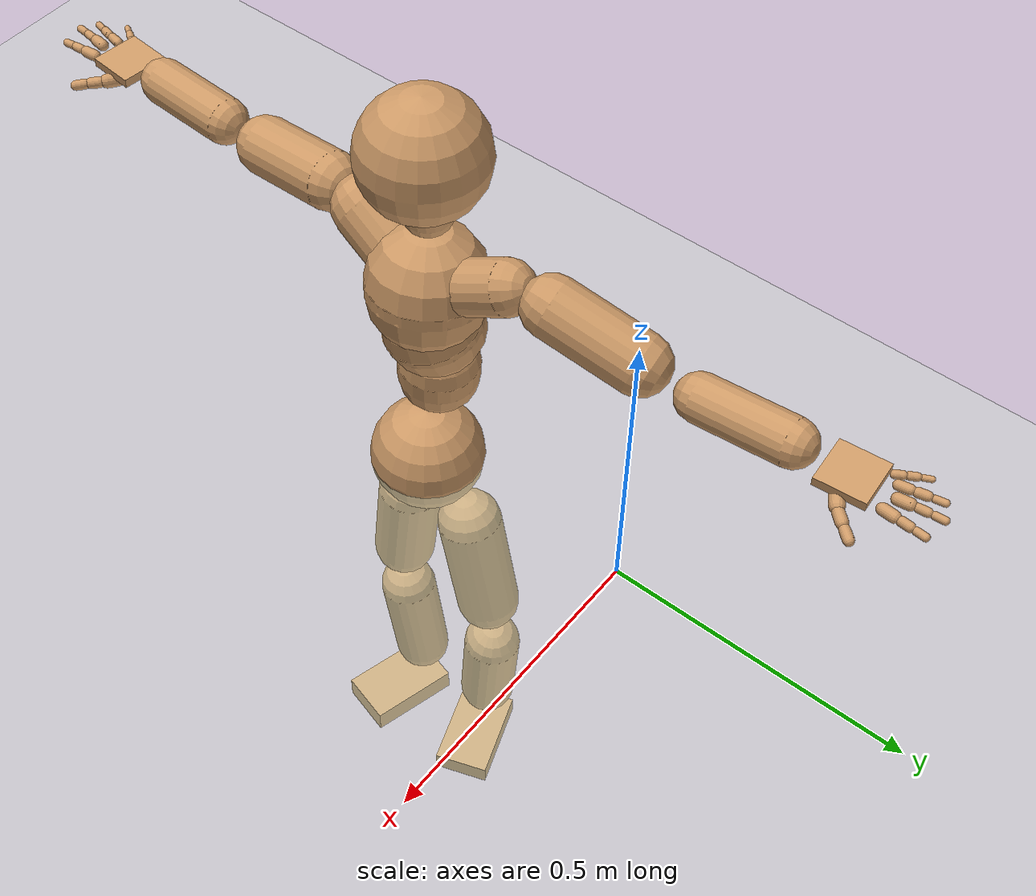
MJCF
<mujoco model="humanoid">
  <compiler coordinate="local" angle="radian"/>
  <default>
    <joint damping="0.0" armature="0.01" stiffness="0.0" limited="true"/>
    <geom conaffinity="1" condim="3" contype="7" margin="0.001" rgba="0.8 0.6 .4 1"/>
  </default>
  <asset>
    <texture type="skybox" builtin="gradient" rgb1=".4 .5 .6" rgb2="0 0 0" width="100" height="100"/>
    <texture builtin="flat" height="1278" mark="cross" markrgb="1 1 1" name="texgeom" random="0.01" rgb1="0.8 0.6 0.4" rgb2="0.8 0.6 0.4" type="cube" width="127"/>
    <texture builtin="checker" height="100" name="texplane" rgb1="0 0 0" rgb2="0.8 0.8 0.8" type="2d" width="100"/>
    <material name="MatPlane" reflectance="0.5" shininess="1" specular="1" texrepeat="60 60" texture="texplane"/>
    <material name="geom" texture="texgeom" texuniform="true"/>
  </asset>
  <worldbody>
    <light cutoff="100" diffuse="1 1 1" dir="-0 0 -1.3" directional="true" exponent="1" pos="0 0 1.3" specular=".1 .1 .1"/>
    <geom conaffinity="1" condim="3" name="floor" pos="0 0 0" rgba="0.8 0.9 0.8 1" size="100 100 .2" type="plane" material="MatPlane"/>
    <body name="Pelvis" pos="0.0008 -0.3736 0.0043">
      <freejoint name="Pelvis"/>
      <geom type="sphere" contype="1" conaffinity="1" density="500" size="0.0936" pos="0.0000 0.0000 0.0000" name="Pelvis"/>
      <body name="L_Hip" pos="-0.0249 0.0514 -0.0912">
        <joint name="L_Hip_x" type="hinge" pos="0 0 0" axis="1 0 0" stiffness="800" damping="80" armature="0.02" range="-180.0000 180.0000"/>
        <joint name="L_Hip_y" type="hinge" pos="0 0 0" axis="0 1 0" stiffness="800" damping="80" armature="0.02" range="-180.0000 180.0000"/>
        <joint name="L_Hip_z" type="hinge" pos="0 0 0" axis="0 0 1" stiffness="800" damping="80" armature="0.02" range="-180.0000 180.0000"/>
        <geom type="capsule" contype="1" conaffinity="1" density="500" fromto="-0.0016 0.0123 -0.0685 -0.0063 0.0494 -0.2741" size="0.054" name="L_Hip"/>
        <body name="L_Knee" pos="-0.0079 0.0617 -0.3426">
          <joint name="L_Knee_x" type="hinge" pos="0 0 0" axis="1 0 0" stiffness="800" damping="80" armature="0.02" range="-180.0000 180.0000"/>
          <joint name="L_Knee_y" type="hinge" pos="0 0 0" axis="0 1 0" stiffness="800" damping="80" armature="0.02" range="-180.0000 180.0000"/>
          <joint name="L_Knee_z" type="hinge" pos="0 0 0" axis="0 0 1" stiffness="800" damping="80" armature="0.02" range="-180.0000 180.0000"/>
          <geom type="capsule" contype="1" conaffinity="1" density="500" fromto="-0.0070 -0.0090 -0.0701 -0.0280 -0.0362 -0.2804" size="0.0499" name="L_Knee"/>
          <body name="L_Ankle" pos="-0.035 -0.0452 -0.3505">
            <joint name="L_Ankle_x" type="hinge" pos="0 0 0" axis="1 0 0" stiffness="800" damping="80" armature="0.02" range="-180.0000 180.0000"/>
            <joint name="L_Ankle_y" type="hinge" pos="0 0 0" axis="0 1 0" stiffness="800" damping="80" armature="0.02" range="-180.0000 180.0000"/>
            <joint name="L_Ankle_z" type="hinge" pos="0 0 0" axis="0 0 1" stiffness="800" damping="80" armature="0.02" range="-180.0000 180.0000"/>
            <geom type="box" contype="1" conaffinity="1" density="500" pos="0.0611 0.0217 -0.0255" size="0.0823 0.0494 0.0192" quat="0.9855 0.0000 0.0000 0.1695" name="L_Ankle"/>
            <body name="L_Toe" pos="0.1222 0.0433 -0.0511">
              <joint name="L_Toe_x" type="hinge" pos="0 0 0" axis="1 0 0" stiffness="500" damping="50" armature="0.02" range="-180.0000 180.0000"/>
              <joint name="L_Toe_y" type="hinge" pos="0 0 0" axis="0 1 0" stiffness="500" damping="50" armature="0.02" range="-180.0000 180.0000"/>
              <joint name="L_Toe_z" type="hinge" pos="0 0 0" axis="0 0 1" stiffness="500" damping="50" armature="0.02" range="-180.0000 180.0000"/>
              <geom type="box" contype="1" conaffinity="1" density="500" pos="0.0000 0.0000 0.0265" size="0.001 0.0023 0.001" quat="0.9847 0.0000 0.0000 0.1740" name="L_Toe"/>
            </body>
          </body>
        </body>
      </body>
      <body name="R_Hip" pos="-0.0192 -0.0524 -0.1009">
        <joint name="R_Hip_x" type="hinge" pos="0 0 0" axis="1 0 0" stiffness="800" damping="80" armature="0.02" range="-180.0000 180.0000"/>
        <joint name="R_Hip_y" type="hinge" pos="0 0 0" axis="0 1 0" stiffness="800" damping="80" armature="0.02" range="-180.0000 180.0000"/>
        <joint name="R_Hip_z" type="hinge" pos="0 0 0" axis="0 0 1" stiffness="800" damping="80" armature="0.02" range="-180.0000 180.0000"/>
        <geom type="capsule" contype="1" conaffinity="1" density="500" fromto="-0.0029 -0.0094 -0.0656 -0.0114 -0.0375 -0.2623" size="0.0538" name="R_Hip"/>
        <body name="R_Knee" pos="-0.0143 -0.0469 -0.3279">
          <joint name="R_Knee_x" type="hinge" pos="0 0 0" axis="1 0 0" stiffness="800" damping="80" armature="0.02" range="-180.0000 180.0000"/>
          <joint name="R_Knee_y" type="hinge" pos="0 0 0" axis="0 1 0" stiffness="800" damping="80" armature="0.02" range="-180.0000 180.0000"/>
          <joint name="R_Knee_z" type="hinge" pos="0 0 0" axis="0 0 1" stiffness="800" damping="80" armature="0.02" range="-180.0000 180.0000"/>
          <geom type="capsule" contype="1" conaffinity="1" density="500" fromto="-0.0069 0.0037 -0.0723 -0.0275 0.0146 -0.2892" size="0.0498" name="R_Knee"/>
          <body name="R_Ankle" pos="-0.0344 0.0183 -0.3615">
            <joint name="R_Ankle_x" type="hinge" pos="0 0 0" axis="1 0 0" stiffness="800" damping="80" armature="0.02" range="-180.0000 180.0000"/>
            <joint name="R_Ankle_y" type="hinge" pos="0 0 0" axis="0 1 0" stiffness="800" damping="80" armature="0.02" range="-180.0000 180.0000"/>
            <joint name="R_Ankle_z" type="hinge" pos="0 0 0" axis="0 0 1" stiffness="800" damping="80" armature="0.02" range="-180.0000 180.0000"/>
            <geom type="box" contype="1" conaffinity="1" density="500" pos="0.0642 -0.0172 -0.0255" size="0.0823 0.0502 0.0228" quat="0.9914 0.0000 0.0000 -0.1308" name="R_Ankle"/>
            <body name="R_Toe" pos="0.1284 -0.0345 -0.0511">
              <joint name="R_Toe_x" type="hinge" pos="0 0 0" axis="1 0 0" stiffness="500" damping="50" armature="0.02" range="-180.0000 180.0000"/>
              <joint name="R_Toe_y" type="hinge" pos="0 0 0" axis="0 1 0" stiffness="500" damping="50" armature="0.02" range="-180.0000 180.0000"/>
              <joint name="R_Toe_z" type="hinge" pos="0 0 0" axis="0 0 1" stiffness="500" damping="50" armature="0.02" range="-180.0000 180.0000"/>
              <geom type="box" contype="1" conaffinity="1" density="500" pos="0.0000 0.0000 0.0229" size="0.001 0.0023 0.001" quat="0.9926 0.0000 0.0000 -0.1218" name="R_Toe"/>
            </body>
          </body>
        </body>
      </body>
      <body name="Torso" pos="-0.0325 -0.0013 0.1053">
        <joint name="Torso_x" type="hinge" pos="0 0 0" axis="1 0 0" stiffness="1000" damping="100" armature="0.02" range="-180.0000 180.0000"/>
        <joint name="Torso_y" type="hinge" pos="0 0 0" axis="0 1 0" stiffness="1000" damping="100" armature="0.02" range="-180.0000 180.0000"/>
        <joint name="Torso_z" type="hinge" pos="0 0 0" axis="0 0 1" stiffness="1000" damping="100" armature="0.02" range="-180.0000 180.0000"/>
        <geom type="capsule" contype="1" conaffinity="1" density="500" fromto="0.0036 0.0051 0.0929 0.0024 0.0034 0.0619" size="0.0651" name="Torso"/>
        <body name="Spine" pos="0.006 0.0085 0.1548">
          <joint name="Spine_x" type="hinge" pos="0 0 0" axis="1 0 0" stiffness="1000" damping="100" armature="0.02" range="-180.0000 180.0000"/>
          <joint name="Spine_y" type="hinge" pos="0 0 0" axis="0 1 0" stiffness="1000" damping="100" armature="0.02" range="-180.0000 180.0000"/>
          <joint name="Spine_z" type="hinge" pos="0 0 0" axis="0 0 1" stiffness="1000" damping="100" armature="0.02" range="-180.0000 180.0000"/>
          <geom type="capsule" contype="1" conaffinity="1" density="500" fromto="0.0100 -0.0048 0.0347 0.0067 -0.0032 0.0231" size="0.0804" name="Spine"/>
          <body name="Chest" pos="0.0167 -0.008 0.0578">
            <joint name="Chest_x" type="hinge" pos="0 0 0" axis="1 0 0" stiffness="1000" damping="100" armature="0.02" range="-180.0000 180.0000"/>
            <joint name="Chest_y" type="hinge" pos="0 0 0" axis="0 1 0" stiffness="1000" damping="100" armature="0.02" range="-180.0000 180.0000"/>
            <joint name="Chest_z" type="hinge" pos="0 0 0" axis="0 0 1" stiffness="1000" damping="100" armature="0.02" range="-180.0000 180.0000"/>
            <geom type="capsule" contype="1" conaffinity="1" density="500" fromto="-0.0058 -0.0018 0.0607 -0.0039 -0.0012 0.0405" size="0.0942" name="Chest"/>
            <body name="Neck" pos="-0.0194 -0.0074 0.1578">
              <joint name="Neck_x" type="hinge" pos="0 0 0" axis="1 0 0" stiffness="500" damping="50" armature="0.02" range="-180.0000 180.0000"/>
              <joint name="Neck_y" type="hinge" pos="0 0 0" axis="0 1 0" stiffness="500" damping="50" armature="0.02" range="-180.0000 180.0000"/>
              <joint name="Neck_z" type="hinge" pos="0 0 0" axis="0 0 1" stiffness="500" damping="50" armature="0.02" range="-180.0000 180.0000"/>
              <geom type="capsule" contype="1" conaffinity="1" density="500" fromto="0.0064 0.0040 0.0322 0.0255 0.0160 0.1288" size="0.0396" name="Neck"/>
              <body name="Head" pos="0.0318 0.02 0.161">
                <joint name="Head_x" type="hinge" pos="0 0 0" axis="1 0 0" stiffness="500" damping="50" armature="0.02" range="-180.0000 180.0000"/>
                <joint name="Head_y" type="hinge" pos="0 0 0" axis="0 1 0" stiffness="500" damping="50" armature="0.02" range="-180.0000 180.0000"/>
                <joint name="Head_z" type="hinge" pos="0 0 0" axis="0 0 1" stiffness="500" damping="50" armature="0.02" range="-180.0000 180.0000"/>
                <geom type="sphere" contype="1" conaffinity="1" density="500" size="0.0975" pos="0.0000 0.0000 0.0000" name="Head"/>
              </body>
            </body>
            <body name="L_Thorax" pos="-0.003 0.0375 0.0725">
              <joint name="L_Thorax_x" type="hinge" pos="0 0 0" axis="1 0 0" stiffness="500" damping="50" armature="0.02" range="-180.0000 180.0000"/>
              <joint name="L_Thorax_y" type="hinge" pos="0 0 0" axis="0 1 0" stiffness="500" damping="50" armature="0.02" range="-180.0000 180.0000"/>
              <joint name="L_Thorax_z" type="hinge" pos="0 0 0" axis="0 0 1" stiffness="500" damping="50" armature="0.02" range="-180.0000 180.0000"/>
              <geom type="capsule" contype="1" conaffinity="1" density="500" fromto="-0.0038 0.0243 0.0120 -0.0152 0.0970 0.0481" size="0.0433" name="L_Thorax"/>
              <body name="L_Shoulder" pos="-0.019 0.1213 0.0601">
                <joint name="L_Shoulder_x" type="hinge" pos="0 0 0" axis="1 0 0" stiffness="500" damping="50" armature="0.02" range="-180.0000 180.0000"/>
                <joint name="L_Shoulder_y" type="hinge" pos="0 0 0" axis="0 1 0" stiffness="500" damping="50" armature="0.02" range="-180.0000 180.0000"/>
                <joint name="L_Shoulder_z" type="hinge" pos="0 0 0" axis="0 0 1" stiffness="500" damping="50" armature="0.02" range="-180.0000 180.0000"/>
                <geom type="capsule" contype="1" conaffinity="1" density="500" fromto="-0.0067 0.0460 -0.0131 -0.0270 0.1838 -0.0523" size="0.0479" name="L_Shoulder"/>
                <body name="L_Elbow" pos="-0.0337 0.2298 -0.0654">
                  <joint name="L_Elbow_x" type="hinge" pos="0 0 0" axis="1 0 0" stiffness="500" damping="50" armature="0.02" range="-720.0000 720.0000"/>
                  <joint name="L_Elbow_y" type="hinge" pos="0 0 0" axis="0 1 0" stiffness="500" damping="50" armature="0.02" range="-720.0000 720.0000"/>
                  <joint name="L_Elbow_z" type="hinge" pos="0 0 0" axis="0 0 1" stiffness="500" damping="50" armature="0.02" range="-720.0000 720.0000"/>
                  <geom type="capsule" contype="1" conaffinity="1" density="500" fromto="-0.0009 0.0486 0.0041 -0.0038 0.1943 0.0166" size="0.0368" name="L_Elbow"/>
                  <body name="L_Wrist" pos="-0.0047 0.2429 0.0207">
                    <joint name="L_Wrist_x" type="hinge" pos="0 0 0" axis="1 0 0" stiffness="300" damping="30" armature="0.02" range="-180.0000 180.0000"/>
                    <joint name="L_Wrist_y" type="hinge" pos="0 0 0" axis="0 1 0" stiffness="300" damping="30" armature="0.02" range="-180.0000 180.0000"/>
                    <joint name="L_Wrist_z" type="hinge" pos="0 0 0" axis="0 0 1" stiffness="300" damping="30" armature="0.02" range="-180.0000 180.0000"/>
                    <geom type="box" contype="1" conaffinity="1" density="500" pos="-0.0034 0.0393 -0.0060" size="0.0391 0.0396 0.0073" quat="0.7366 0.0000 0.0000 -0.6763" name="L_Wrist"/>
                    <body name="L_Index1" pos="0.0179 0.0923 -0.0095">
                      <joint name="L_Index1_x" type="hinge" pos="0 0 0" axis="1 0 0" stiffness="100" damping="10" armature="0.02" range="-180.0000 180.0000"/>
                      <joint name="L_Index1_y" type="hinge" pos="0 0 0" axis="0 1 0" stiffness="100" damping="10" armature="0.02" range="-180.0000 180.0000"/>
                      <joint name="L_Index1_z" type="hinge" pos="0 0 0" axis="0 0 1" stiffness="100" damping="10" armature="0.02" range="-180.0000 180.0000"/>
                      <geom type="capsule" contype="1" conaffinity="1" density="500" fromto="0.0007 0.0062 0.0003 0.0026 0.0248 0.0010" size="0.009" name="L_Index1"/>
                      <body name="L_Index2" pos="0.0033 0.031 0.0013">
                        <joint name="L_Index2_x" type="hinge" pos="0 0 0" axis="1 0 0" stiffness="100" damping="10" armature="0.02" range="-180.0000 180.0000"/>
                        <joint name="L_Index2_y" type="hinge" pos="0 0 0" axis="0 1 0" stiffness="100" damping="10" armature="0.02" range="-180.0000 180.0000"/>
                        <joint name="L_Index2_z" type="hinge" pos="0 0 0" axis="0 0 1" stiffness="100" damping="10" armature="0.02" range="-180.0000 180.0000"/>
                        <geom type="capsule" contype="1" conaffinity="1" density="500" fromto="-0.0001 0.0044 -0.0005 -0.0002 0.0174 -0.0020" size="0.0073" name="L_Index2"/>
                        <body name="L_Index3" pos="-0.0003 0.0218 -0.0025">
                          <joint name="L_Index3_x" type="hinge" pos="0 0 0" axis="1 0 0" stiffness="100" damping="10" armature="0.02" range="-180.0000 180.0000"/>
                          <joint name="L_Index3_y" type="hinge" pos="0 0 0" axis="0 1 0" stiffness="100" damping="10" armature="0.02" range="-180.0000 180.0000"/>
                          <joint name="L_Index3_z" type="hinge" pos="0 0 0" axis="0 0 1" stiffness="100" damping="10" armature="0.02" range="-180.0000 180.0000"/>
                          <geom type="capsule" contype="1" conaffinity="1" density="500" fromto="0.0003 0.0048 -0.0001 0.0014 0.0190 -0.0004" size="0.0061" name="L_Index3"/>
                        </body>
                      </body>
                    </body>
                    <body name="L_Middle1" pos="-0.0049 0.0999 -0.0069">
                      <joint name="L_Middle1_x" type="hinge" pos="0 0 0" axis="1 0 0" stiffness="100" damping="10" armature="0.02" range="-180.0000 180.0000"/>
                      <joint name="L_Middle1_y" type="hinge" pos="0 0 0" axis="0 1 0" stiffness="100" damping="10" armature="0.02" range="-180.0000 180.0000"/>
                      <joint name="L_Middle1_z" type="hinge" pos="0 0 0" axis="0 0 1" stiffness="100" damping="10" armature="0.02" range="-180.0000 180.0000"/>
                      <geom type="capsule" contype="1" conaffinity="1" density="500" fromto="-0.0008 0.0059 0.0001 -0.0033 0.0236 0.0003" size="0.0091" name="L_Middle1"/>
                      <body name="L_Middle2" pos="-0.0041 0.0295 0.0003">
                        <joint name="L_Middle2_x" type="hinge" pos="0 0 0" axis="1 0 0" stiffness="100" damping="10" armature="0.02" range="-180.0000 180.0000"/>
                        <joint name="L_Middle2_y" type="hinge" pos="0 0 0" axis="0 1 0" stiffness="100" damping="10" armature="0.02" range="-180.0000 180.0000"/>
                        <joint name="L_Middle2_z" type="hinge" pos="0 0 0" axis="0 0 1" stiffness="100" damping="10" armature="0.02" range="-180.0000 180.0000"/>
                        <geom type="capsule" contype="1" conaffinity="1" density="500" fromto="-0.0008 0.0045 -0.0004 -0.0033 0.0180 -0.0017" size="0.0068" name="L_Middle2"/>
                        <body name="L_Middle3" pos="-0.0042 0.0224 -0.0021">
                          <joint name="L_Middle3_x" type="hinge" pos="0 0 0" axis="1 0 0" stiffness="100" damping="10" armature="0.02" range="-180.0000 180.0000"/>
                          <joint name="L_Middle3_y" type="hinge" pos="0 0 0" axis="0 1 0" stiffness="100" damping="10" armature="0.02" range="-180.0000 180.0000"/>
                          <joint name="L_Middle3_z" type="hinge" pos="0 0 0" axis="0 0 1" stiffness="100" damping="10" armature="0.02" range="-180.0000 180.0000"/>
                          <geom type="capsule" contype="1" conaffinity="1" density="500" fromto="-0.0004 0.0049 -0.0000 -0.0017 0.0196 -0.0001" size="0.0059" name="L_Middle3"/>
                        </body>
                      </body>
                    </body>
                    <body name="L_Pinky1" pos="-0.0432 0.0769 -0.0148">
                      <joint name="L_Pinky1_x" type="hinge" pos="0 0 0" axis="1 0 0" stiffness="100" damping="10" armature="0.02" range="-180.0000 180.0000"/>
                      <joint name="L_Pinky1_y" type="hinge" pos="0 0 0" axis="0 1 0" stiffness="100" damping="10" armature="0.02" range="-180.0000 180.0000"/>
                      <joint name="L_Pinky1_z" type="hinge" pos="0 0 0" axis="0 0 1" stiffness="100" damping="10" armature="0.02" range="-180.0000 180.0000"/>
                      <geom type="capsule" contype="1" conaffinity="1" density="500" fromto="-0.0022 0.0032 -0.0003 -0.0087 0.0127 -0.0013" size="0.0064" name="L_Pinky1"/>
                      <body name="L_Pinky2" pos="-0.0109 0.0159 -0.0016">
                        <joint name="L_Pinky2_x" type="hinge" pos="0 0 0" axis="1 0 0" stiffness="100" damping="10" armature="0.02" range="-180.0000 180.0000"/>
                        <joint name="L_Pinky2_y" type="hinge" pos="0 0 0" axis="0 1 0" stiffness="100" damping="10" armature="0.02" range="-180.0000 180.0000"/>
                        <joint name="L_Pinky2_z" type="hinge" pos="0 0 0" axis="0 0 1" stiffness="100" damping="10" armature="0.02" range="-180.0000 180.0000"/>
                        <geom type="capsule" contype="1" conaffinity="1" density="500" fromto="-0.0021 0.0031 -0.0003 -0.0083 0.0125 -0.0013" size="0.0062" name="L_Pinky2"/>
                        <body name="L_Pinky3" pos="-0.0103 0.0156 -0.0017">
                          <joint name="L_Pinky3_x" type="hinge" pos="0 0 0" axis="1 0 0" stiffness="100" damping="10" armature="0.02" range="-180.0000 180.0000"/>
                          <joint name="L_Pinky3_y" type="hinge" pos="0 0 0" axis="0 1 0" stiffness="100" damping="10" armature="0.02" range="-180.0000 180.0000"/>
                          <joint name="L_Pinky3_z" type="hinge" pos="0 0 0" axis="0 0 1" stiffness="100" damping="10" armature="0.02" range="-180.0000 180.0000"/>
                          <geom type="capsule" contype="1" conaffinity="1" density="500" fromto="-0.0017 0.0035 0.0001 -0.0067 0.0141 0.0003" size="0.0047" name="L_Pinky3"/>
                        </body>
                      </body>
                    </body>
                    <body name="L_Ring1" pos="-0.0275 0.089 -0.0096">
                      <joint name="L_Ring1_x" type="hinge" pos="0 0 0" axis="1 0 0" stiffness="100" damping="10" armature="0.02" range="-180.0000 180.0000"/>
                      <joint name="L_Ring1_y" type="hinge" pos="0 0 0" axis="0 1 0" stiffness="100" damping="10" armature="0.02" range="-180.0000 180.0000"/>
                      <joint name="L_Ring1_z" type="hinge" pos="0 0 0" axis="0 0 1" stiffness="100" damping="10" armature="0.02" range="-180.0000 180.0000"/>
                      <geom type="capsule" contype="1" conaffinity="1" density="500" fromto="-0.0009 0.0054 0.0001 -0.0038 0.0217 0.0004" size="0.0077" name="L_Ring1"/>
                      <body name="L_Ring2" pos="-0.0047 0.0271 0.0006">
                        <joint name="L_Ring2_x" type="hinge" pos="0 0 0" axis="1 0 0" stiffness="100" damping="10" armature="0.02" range="-180.0000 180.0000"/>
                        <joint name="L_Ring2_y" type="hinge" pos="0 0 0" axis="0 1 0" stiffness="100" damping="10" armature="0.02" range="-180.0000 180.0000"/>
                        <joint name="L_Ring2_z" type="hinge" pos="0 0 0" axis="0 0 1" stiffness="100" damping="10" armature="0.02" range="-180.0000 180.0000"/>
                        <geom type="capsule" contype="1" conaffinity="1" density="500" fromto="-0.0013 0.0044 -0.0004 -0.0051 0.0177 -0.0016" size="0.0073" name="L_Ring2"/>
                        <body name="L_Ring3" pos="-0.0063 0.0221 -0.002">
                          <joint name="L_Ring3_x" type="hinge" pos="0 0 0" axis="1 0 0" stiffness="100" damping="10" armature="0.02" range="-180.0000 180.0000"/>
                          <joint name="L_Ring3_y" type="hinge" pos="0 0 0" axis="0 1 0" stiffness="100" damping="10" armature="0.02" range="-180.0000 180.0000"/>
                          <joint name="L_Ring3_z" type="hinge" pos="0 0 0" axis="0 0 1" stiffness="100" damping="10" armature="0.02" range="-180.0000 180.0000"/>
                          <geom type="capsule" contype="1" conaffinity="1" density="500" fromto="-0.0009 0.0048 0.0000 -0.0035 0.0193 0.0000" size="0.0056" name="L_Ring3"/>
                        </body>
                      </body>
                    </body>
                    <body name="L_Thumb1" pos="0.0241 0.0352 -0.0194">
                      <joint name="L_Thumb1_x" type="hinge" pos="0 0 0" axis="1 0 0" stiffness="100" damping="10" armature="0.02" range="-180.0000 180.0000"/>
                      <joint name="L_Thumb1_y" type="hinge" pos="0 0 0" axis="0 1 0" stiffness="100" damping="10" armature="0.02" range="-180.0000 180.0000"/>
                      <joint name="L_Thumb1_z" type="hinge" pos="0 0 0" axis="0 0 1" stiffness="100" damping="10" armature="0.02" range="-180.0000 180.0000"/>
                      <geom type="capsule" contype="1" conaffinity="1" density="500" fromto="0.0050 0.0031 0.0003 0.0199 0.0123 0.0012" size="0.0115" name="L_Thumb1"/>
                      <body name="L_Thumb2" pos="0.0248 0.0153 0.0015">
                        <joint name="L_Thumb2_x" type="hinge" pos="0 0 0" axis="1 0 0" stiffness="100" damping="10" armature="0.02" range="-180.0000 180.0000"/>
                        <joint name="L_Thumb2_y" type="hinge" pos="0 0 0" axis="0 1 0" stiffness="100" damping="10" armature="0.02" range="-180.0000 180.0000"/>
                        <joint name="L_Thumb2_z" type="hinge" pos="0 0 0" axis="0 0 1" stiffness="100" damping="10" armature="0.02" range="-180.0000 180.0000"/>
                        <geom type="capsule" contype="1" conaffinity="1" density="500" fromto="0.0031 0.0039 -0.0008 0.0125 0.0155 -0.0033" size="0.0091" name="L_Thumb2"/>
                        <body name="L_Thumb3" pos="0.0156 0.0194 -0.0041">
                          <joint name="L_Thumb3_x" type="hinge" pos="0 0 0" axis="1 0 0" stiffness="100" damping="10" armature="0.02" range="-180.0000 180.0000"/>
                          <joint name="L_Thumb3_y" type="hinge" pos="0 0 0" axis="0 1 0" stiffness="100" damping="10" armature="0.02" range="-180.0000 180.0000"/>
                          <joint name="L_Thumb3_z" type="hinge" pos="0 0 0" axis="0 0 1" stiffness="100" damping="10" armature="0.02" range="-180.0000 180.0000"/>
                          <geom type="capsule" contype="1" conaffinity="1" density="500" fromto="0.0035 0.0043 -0.0004 0.0141 0.0171 -0.0017" size="0.0081" name="L_Thumb3"/>
                        </body>
                      </body>
                    </body>
                  </body>
                </body>
              </body>
            </body>
            <body name="R_Thorax" pos="-0.0065 -0.0391 0.0732">
              <joint name="R_Thorax_x" type="hinge" pos="0 0 0" axis="1 0 0" stiffness="500" damping="50" armature="0.02" range="-180.0000 180.0000"/>
              <joint name="R_Thorax_y" type="hinge" pos="0 0 0" axis="0 1 0" stiffness="500" damping="50" armature="0.02" range="-180.0000 180.0000"/>
              <joint name="R_Thorax_z" type="hinge" pos="0 0 0" axis="0 0 1" stiffness="500" damping="50" armature="0.02" range="-180.0000 180.0000"/>
              <geom type="capsule" contype="1" conaffinity="1" density="500" fromto="-0.0028 -0.0226 0.0116 -0.0113 -0.0904 0.0463" size="0.0513" name="R_Thorax"/>
              <body name="R_Shoulder" pos="-0.0141 -0.113 0.0579">
                <joint name="R_Shoulder_x" type="hinge" pos="0 0 0" axis="1 0 0" stiffness="500" damping="50" armature="0.02" range="-180.0000 180.0000"/>
                <joint name="R_Shoulder_y" type="hinge" pos="0 0 0" axis="0 1 0" stiffness="500" damping="50" armature="0.02" range="-180.0000 180.0000"/>
                <joint name="R_Shoulder_z" type="hinge" pos="0 0 0" axis="0 0 1" stiffness="500" damping="50" armature="0.02" range="-180.0000 180.0000"/>
                <geom type="capsule" contype="1" conaffinity="1" density="500" fromto="-0.0051 -0.0489 -0.0078 -0.0203 -0.1955 -0.0313" size="0.0472" name="R_Shoulder"/>
                <body name="R_Elbow" pos="-0.0254 -0.2444 -0.0391">
                  <joint name="R_Elbow_x" type="hinge" pos="0 0 0" axis="1 0 0" stiffness="500" damping="50" armature="0.02" range="-720.0000 720.0000"/>
                  <joint name="R_Elbow_y" type="hinge" pos="0 0 0" axis="0 1 0" stiffness="500" damping="50" armature="0.02" range="-720.0000 720.0000"/>
                  <joint name="R_Elbow_z" type="hinge" pos="0 0 0" axis="0 0 1" stiffness="500" damping="50" armature="0.02" range="-720.0000 720.0000"/>
                  <geom type="capsule" contype="1" conaffinity="1" density="500" fromto="-0.0027 -0.0471 -0.0002 -0.0108 -0.1883 -0.0007" size="0.0377" name="R_Elbow"/>
                  <body name="R_Wrist" pos="-0.0135 -0.2353 -0.0009">
                    <joint name="R_Wrist_x" type="hinge" pos="0 0 0" axis="1 0 0" stiffness="300" damping="30" armature="0.02" range="-180.0000 180.0000"/>
                    <joint name="R_Wrist_y" type="hinge" pos="0 0 0" axis="0 1 0" stiffness="300" damping="30" armature="0.02" range="-180.0000 180.0000"/>
                    <joint name="R_Wrist_z" type="hinge" pos="0 0 0" axis="0 0 1" stiffness="300" damping="30" armature="0.02" range="-180.0000 180.0000"/>
                    <geom type="box" contype="1" conaffinity="1" density="500" pos="-0.0039 -0.0392 -0.0076" size="0.0391 0.0404 0.0074" quat="0.7410 0.0000 0.0000 0.6715" name="R_Wrist"/>
                    <body name="R_Index1" pos="0.0169 -0.0921 -0.0126">
                      <joint name="R_Index1_x" type="hinge" pos="0 0 0" axis="1 0 0" stiffness="100" damping="10" armature="0.02" range="-180.0000 180.0000"/>
                      <joint name="R_Index1_y" type="hinge" pos="0 0 0" axis="0 1 0" stiffness="100" damping="10" armature="0.02" range="-180.0000 180.0000"/>
                      <joint name="R_Index1_z" type="hinge" pos="0 0 0" axis="0 0 1" stiffness="100" damping="10" armature="0.02" range="-180.0000 180.0000"/>
                      <geom type="capsule" contype="1" conaffinity="1" density="500" fromto="0.0007 -0.0062 0.0003 0.0026 -0.0248 0.0010" size="0.009" name="R_Index1"/>
                      <body name="R_Index2" pos="0.0033 -0.031 0.0013">
                        <joint name="R_Index2_x" type="hinge" pos="0 0 0" axis="1 0 0" stiffness="100" damping="10" armature="0.02" range="-180.0000 180.0000"/>
                        <joint name="R_Index2_y" type="hinge" pos="0 0 0" axis="0 1 0" stiffness="100" damping="10" armature="0.02" range="-180.0000 180.0000"/>
                        <joint name="R_Index2_z" type="hinge" pos="0 0 0" axis="0 0 1" stiffness="100" damping="10" armature="0.02" range="-180.0000 180.0000"/>
                        <geom type="capsule" contype="1" conaffinity="1" density="500" fromto="-0.0001 -0.0044 -0.0005 -0.0002 -0.0174 -0.0020" size="0.0073" name="R_Index2"/>
                        <body name="R_Index3" pos="-0.0003 -0.0218 -0.0025">
                          <joint name="R_Index3_x" type="hinge" pos="0 0 0" axis="1 0 0" stiffness="100" damping="10" armature="0.02" range="-180.0000 180.0000"/>
                          <joint name="R_Index3_y" type="hinge" pos="0 0 0" axis="0 1 0" stiffness="100" damping="10" armature="0.02" range="-180.0000 180.0000"/>
                          <joint name="R_Index3_z" type="hinge" pos="0 0 0" axis="0 0 1" stiffness="100" damping="10" armature="0.02" range="-180.0000 180.0000"/>
                          <geom type="capsule" contype="1" conaffinity="1" density="500" fromto="0.0003 -0.0040 -0.0001 0.0014 -0.0158 -0.0004" size="0.0064" name="R_Index3"/>
                        </body>
                      </body>
                    </body>
                    <body name="R_Middle1" pos="-0.0059 -0.0997 -0.0101">
                      <joint name="R_Middle1_x" type="hinge" pos="0 0 0" axis="1 0 0" stiffness="100" damping="10" armature="0.02" range="-180.0000 180.0000"/>
                      <joint name="R_Middle1_y" type="hinge" pos="0 0 0" axis="0 1 0" stiffness="100" damping="10" armature="0.02" range="-180.0000 180.0000"/>
                      <joint name="R_Middle1_z" type="hinge" pos="0 0 0" axis="0 0 1" stiffness="100" damping="10" armature="0.02" range="-180.0000 180.0000"/>
                      <geom type="capsule" contype="1" conaffinity="1" density="500" fromto="-0.0008 -0.0059 0.0001 -0.0033 -0.0236 0.0003" size="0.0091" name="R_Middle1"/>
                      <body name="R_Middle2" pos="-0.0041 -0.0295 0.0003">
                        <joint name="R_Middle2_x" type="hinge" pos="0 0 0" axis="1 0 0" stiffness="100" damping="10" armature="0.02" range="-180.0000 180.0000"/>
                        <joint name="R_Middle2_y" type="hinge" pos="0 0 0" axis="0 1 0" stiffness="100" damping="10" armature="0.02" range="-180.0000 180.0000"/>
                        <joint name="R_Middle2_z" type="hinge" pos="0 0 0" axis="0 0 1" stiffness="100" damping="10" armature="0.02" range="-180.0000 180.0000"/>
                        <geom type="capsule" contype="1" conaffinity="1" density="500" fromto="-0.0008 -0.0045 -0.0004 -0.0033 -0.0180 -0.0017" size="0.0068" name="R_Middle2"/>
                        <body name="R_Middle3" pos="-0.0042 -0.0224 -0.0021">
                          <joint name="R_Middle3_x" type="hinge" pos="0 0 0" axis="1 0 0" stiffness="100" damping="10" armature="0.02" range="-180.0000 180.0000"/>
                          <joint name="R_Middle3_y" type="hinge" pos="0 0 0" axis="0 1 0" stiffness="100" damping="10" armature="0.02" range="-180.0000 180.0000"/>
                          <joint name="R_Middle3_z" type="hinge" pos="0 0 0" axis="0 0 1" stiffness="100" damping="10" armature="0.02" range="-180.0000 180.0000"/>
                          <geom type="capsule" contype="1" conaffinity="1" density="500" fromto="-0.0004 -0.0041 -0.0000 -0.0017 -0.0164 -0.0001" size="0.0062" name="R_Middle3"/>
                        </body>
                      </body>
                    </body>
                    <body name="R_Pinky1" pos="-0.0442 -0.0767 -0.018">
                      <joint name="R_Pinky1_x" type="hinge" pos="0 0 0" axis="1 0 0" stiffness="100" damping="10" armature="0.02" range="-180.0000 180.0000"/>
                      <joint name="R_Pinky1_y" type="hinge" pos="0 0 0" axis="0 1 0" stiffness="100" damping="10" armature="0.02" range="-180.0000 180.0000"/>
                      <joint name="R_Pinky1_z" type="hinge" pos="0 0 0" axis="0 0 1" stiffness="100" damping="10" armature="0.02" range="-180.0000 180.0000"/>
                      <geom type="capsule" contype="1" conaffinity="1" density="500" fromto="-0.0022 -0.0032 -0.0003 -0.0087 -0.0127 -0.0013" size="0.0064" name="R_Pinky1"/>
                      <body name="R_Pinky2" pos="-0.0109 -0.0159 -0.0016">
                        <joint name="R_Pinky2_x" type="hinge" pos="0 0 0" axis="1 0 0" stiffness="100" damping="10" armature="0.02" range="-180.0000 180.0000"/>
                        <joint name="R_Pinky2_y" type="hinge" pos="0 0 0" axis="0 1 0" stiffness="100" damping="10" armature="0.02" range="-180.0000 180.0000"/>
                        <joint name="R_Pinky2_z" type="hinge" pos="0 0 0" axis="0 0 1" stiffness="100" damping="10" armature="0.02" range="-180.0000 180.0000"/>
                        <geom type="capsule" contype="1" conaffinity="1" density="500" fromto="-0.0021 -0.0031 -0.0003 -0.0083 -0.0125 -0.0013" size="0.0062" name="R_Pinky2"/>
                        <body name="R_Pinky3" pos="-0.0103 -0.0156 -0.0017">
                          <joint name="R_Pinky3_x" type="hinge" pos="0 0 0" axis="1 0 0" stiffness="100" damping="10" armature="0.02" range="-180.0000 180.0000"/>
                          <joint name="R_Pinky3_y" type="hinge" pos="0 0 0" axis="0 1 0" stiffness="100" damping="10" armature="0.02" range="-180.0000 180.0000"/>
                          <joint name="R_Pinky3_z" type="hinge" pos="0 0 0" axis="0 0 1" stiffness="100" damping="10" armature="0.02" range="-180.0000 180.0000"/>
                          <geom type="capsule" contype="1" conaffinity="1" density="500" fromto="-0.0017 -0.0027 0.0001 -0.0067 -0.0109 0.0003" size="0.0049" name="R_Pinky3"/>
                        </body>
                      </body>
                    </body>
                    <body name="R_Ring1" pos="-0.0285 -0.0888 -0.0128">
                      <joint name="R_Ring1_x" type="hinge" pos="0 0 0" axis="1 0 0" stiffness="100" damping="10" armature="0.02" range="-180.0000 180.0000"/>
                      <joint name="R_Ring1_y" type="hinge" pos="0 0 0" axis="0 1 0" stiffness="100" damping="10" armature="0.02" range="-180.0000 180.0000"/>
                      <joint name="R_Ring1_z" type="hinge" pos="0 0 0" axis="0 0 1" stiffness="100" damping="10" armature="0.02" range="-180.0000 180.0000"/>
                      <geom type="capsule" contype="1" conaffinity="1" density="500" fromto="-0.0009 -0.0054 0.0001 -0.0038 -0.0217 0.0004" size="0.0077" name="R_Ring1"/>
                      <body name="R_Ring2" pos="-0.0047 -0.0271 0.0006">
                        <joint name="R_Ring2_x" type="hinge" pos="0 0 0" axis="1 0 0" stiffness="100" damping="10" armature="0.02" range="-180.0000 180.0000"/>
                        <joint name="R_Ring2_y" type="hinge" pos="0 0 0" axis="0 1 0" stiffness="100" damping="10" armature="0.02" range="-180.0000 180.0000"/>
                        <joint name="R_Ring2_z" type="hinge" pos="0 0 0" axis="0 0 1" stiffness="100" damping="10" armature="0.02" range="-180.0000 180.0000"/>
                        <geom type="capsule" contype="1" conaffinity="1" density="500" fromto="-0.0013 -0.0044 -0.0004 -0.0051 -0.0177 -0.0016" size="0.0073" name="R_Ring2"/>
                        <body name="R_Ring3" pos="-0.0063 -0.0221 -0.002">
                          <joint name="R_Ring3_x" type="hinge" pos="0 0 0" axis="1 0 0" stiffness="100" damping="10" armature="0.02" range="-180.0000 180.0000"/>
                          <joint name="R_Ring3_y" type="hinge" pos="0 0 0" axis="0 1 0" stiffness="100" damping="10" armature="0.02" range="-180.0000 180.0000"/>
                          <joint name="R_Ring3_z" type="hinge" pos="0 0 0" axis="0 0 1" stiffness="100" damping="10" armature="0.02" range="-180.0000 180.0000"/>
                          <geom type="capsule" contype="1" conaffinity="1" density="500" fromto="-0.0009 -0.0040 0.0000 -0.0035 -0.0161 0.0000" size="0.0058" name="R_Ring3"/>
                        </body>
                      </body>
                    </body>
                    <body name="R_Thumb1" pos="0.0231 -0.035 -0.0226">
                      <joint name="R_Thumb1_x" type="hinge" pos="0 0 0" axis="1 0 0" stiffness="100" damping="10" armature="0.02" range="-180.0000 180.0000"/>
                      <joint name="R_Thumb1_y" type="hinge" pos="0 0 0" axis="0 1 0" stiffness="100" damping="10" armature="0.02" range="-180.0000 180.0000"/>
                      <joint name="R_Thumb1_z" type="hinge" pos="0 0 0" axis="0 0 1" stiffness="100" damping="10" armature="0.02" range="-180.0000 180.0000"/>
                      <geom type="capsule" contype="1" conaffinity="1" density="500" fromto="0.0050 -0.0031 0.0003 0.0199 -0.0123 0.0012" size="0.0115" name="R_Thumb1"/>
                      <body name="R_Thumb2" pos="0.0248 -0.0153 0.0016">
                        <joint name="R_Thumb2_x" type="hinge" pos="0 0 0" axis="1 0 0" stiffness="100" damping="10" armature="0.02" range="-180.0000 180.0000"/>
                        <joint name="R_Thumb2_y" type="hinge" pos="0 0 0" axis="0 1 0" stiffness="100" damping="10" armature="0.02" range="-180.0000 180.0000"/>
                        <joint name="R_Thumb2_z" type="hinge" pos="0 0 0" axis="0 0 1" stiffness="100" damping="10" armature="0.02" range="-180.0000 180.0000"/>
                        <geom type="capsule" contype="1" conaffinity="1" density="500" fromto="0.0031 -0.0039 -0.0008 0.0125 -0.0155 -0.0033" size="0.0091" name="R_Thumb2"/>
                        <body name="R_Thumb3" pos="0.0156 -0.0194 -0.0041">
                          <joint name="R_Thumb3_x" type="hinge" pos="0 0 0" axis="1 0 0" stiffness="100" damping="10" armature="0.02" range="-180.0000 180.0000"/>
                          <joint name="R_Thumb3_y" type="hinge" pos="0 0 0" axis="0 1 0" stiffness="100" damping="10" armature="0.02" range="-180.0000 180.0000"/>
                          <joint name="R_Thumb3_z" type="hinge" pos="0 0 0" axis="0 0 1" stiffness="100" damping="10" armature="0.02" range="-180.0000 180.0000"/>
                          <geom type="capsule" contype="1" conaffinity="1" density="500" fromto="0.0035 -0.0035 -0.0004 0.0141 -0.0139 -0.0017" size="0.0083" name="R_Thumb3"/>
                        </body>
                      </body>
                    </body>
                  </body>
                </body>
              </body>
            </body>
          </body>
        </body>
      </body>
    </body>
  </worldbody>
  <actuator>
    <motor name="L_Hip_x" joint="L_Hip_x" gear="500"/>
    <motor name="L_Hip_y" joint="L_Hip_y" gear="500"/>
    <motor name="L_Hip_z" joint="L_Hip_z" gear="500"/>
    <motor name="L_Knee_x" joint="L_Knee_x" gear="500"/>
    <motor name="L_Knee_y" joint="L_Knee_y" gear="500"/>
    <motor name="L_Knee_z" joint="L_Knee_z" gear="500"/>
    <motor name="L_Ankle_x" joint="L_Ankle_x" gear="500"/>
    <motor name="L_Ankle_y" joint="L_Ankle_y" gear="500"/>
    <motor name="L_Ankle_z" joint="L_Ankle_z" gear="500"/>
    <motor name="L_Toe_x" joint="L_Toe_x" gear="500"/>
    <motor name="L_Toe_y" joint="L_Toe_y" gear="500"/>
    <motor name="L_Toe_z" joint="L_Toe_z" gear="500"/>
    <motor name="R_Hip_x" joint="R_Hip_x" gear="500"/>
    <motor name="R_Hip_y" joint="R_Hip_y" gear="500"/>
    <motor name="R_Hip_z" joint="R_Hip_z" gear="500"/>
    <motor name="R_Knee_x" joint="R_Knee_x" gear="500"/>
    <motor name="R_Knee_y" joint="R_Knee_y" gear="500"/>
    <motor name="R_Knee_z" joint="R_Knee_z" gear="500"/>
    <motor name="R_Ankle_x" joint="R_Ankle_x" gear="500"/>
    <motor name="R_Ankle_y" joint="R_Ankle_y" gear="500"/>
    <motor name="R_Ankle_z" joint="R_Ankle_z" gear="500"/>
    <motor name="R_Toe_x" joint="R_Toe_x" gear="500"/>
    <motor name="R_Toe_y" joint="R_Toe_y" gear="500"/>
    <motor name="R_Toe_z" joint="R_Toe_z" gear="500"/>
    <motor name="Torso_x" joint="Torso_x" gear="500"/>
    <motor name="Torso_y" joint="Torso_y" gear="500"/>
    <motor name="Torso_z" joint="Torso_z" gear="500"/>
    <motor name="Spine_x" joint="Spine_x" gear="500"/>
    <motor name="Spine_y" joint="Spine_y" gear="500"/>
    <motor name="Spine_z" joint="Spine_z" gear="500"/>
    <motor name="Chest_x" joint="Chest_x" gear="500"/>
    <motor name="Chest_y" joint="Chest_y" gear="500"/>
    <motor name="Chest_z" joint="Chest_z" gear="500"/>
    <motor name="Neck_x" joint="Neck_x" gear="500"/>
    <motor name="Neck_y" joint="Neck_y" gear="500"/>
    <motor name="Neck_z" joint="Neck_z" gear="500"/>
    <motor name="Head_x" joint="Head_x" gear="500"/>
    <motor name="Head_y" joint="Head_y" gear="500"/>
    <motor name="Head_z" joint="Head_z" gear="500"/>
    <motor name="L_Thorax_x" joint="L_Thorax_x" gear="500"/>
    <motor name="L_Thorax_y" joint="L_Thorax_y" gear="500"/>
    <motor name="L_Thorax_z" joint="L_Thorax_z" gear="500"/>
    <motor name="L_Shoulder_x" joint="L_Shoulder_x" gear="500"/>
    <motor name="L_Shoulder_y" joint="L_Shoulder_y" gear="500"/>
    <motor name="L_Shoulder_z" joint="L_Shoulder_z" gear="500"/>
    <motor name="L_Elbow_x" joint="L_Elbow_x" gear="500"/>
    <motor name="L_Elbow_y" joint="L_Elbow_y" gear="500"/>
    <motor name="L_Elbow_z" joint="L_Elbow_z" gear="500"/>
    <motor name="L_Wrist_x" joint="L_Wrist_x" gear="500"/>
    <motor name="L_Wrist_y" joint="L_Wrist_y" gear="500"/>
    <motor name="L_Wrist_z" joint="L_Wrist_z" gear="500"/>
    <motor name="L_Index1_x" joint="L_Index1_x" gear="500"/>
    <motor name="L_Index1_y" joint="L_Index1_y" gear="500"/>
    <motor name="L_Index1_z" joint="L_Index1_z" gear="500"/>
    <motor name="L_Index2_x" joint="L_Index2_x" gear="500"/>
    <motor name="L_Index2_y" joint="L_Index2_y" gear="500"/>
    <motor name="L_Index2_z" joint="L_Index2_z" gear="500"/>
    <motor name="L_Index3_x" joint="L_Index3_x" gear="500"/>
    <motor name="L_Index3_y" joint="L_Index3_y" gear="500"/>
    <motor name="L_Index3_z" joint="L_Index3_z" gear="500"/>
    <motor name="L_Middle1_x" joint="L_Middle1_x" gear="500"/>
    <motor name="L_Middle1_y" joint="L_Middle1_y" gear="500"/>
    <motor name="L_Middle1_z" joint="L_Middle1_z" gear="500"/>
    <motor name="L_Middle2_x" joint="L_Middle2_x" gear="500"/>
    <motor name="L_Middle2_y" joint="L_Middle2_y" gear="500"/>
    <motor name="L_Middle2_z" joint="L_Middle2_z" gear="500"/>
    <motor name="L_Middle3_x" joint="L_Middle3_x" gear="500"/>
    <motor name="L_Middle3_y" joint="L_Middle3_y" gear="500"/>
    <motor name="L_Middle3_z" joint="L_Middle3_z" gear="500"/>
    <motor name="L_Pinky1_x" joint="L_Pinky1_x" gear="500"/>
    <motor name="L_Pinky1_y" joint="L_Pinky1_y" gear="500"/>
    <motor name="L_Pinky1_z" joint="L_Pinky1_z" gear="500"/>
    <motor name="L_Pinky2_x" joint="L_Pinky2_x" gear="500"/>
    <motor name="L_Pinky2_y" joint="L_Pinky2_y" gear="500"/>
    <motor name="L_Pinky2_z" joint="L_Pinky2_z" gear="500"/>
    <motor name="L_Pinky3_x" joint="L_Pinky3_x" gear="500"/>
    <motor name="L_Pinky3_y" joint="L_Pinky3_y" gear="500"/>
    <motor name="L_Pinky3_z" joint="L_Pinky3_z" gear="500"/>
    <motor name="L_Ring1_x" joint="L_Ring1_x" gear="500"/>
    <motor name="L_Ring1_y" joint="L_Ring1_y" gear="500"/>
    <motor name="L_Ring1_z" joint="L_Ring1_z" gear="500"/>
    <motor name="L_Ring2_x" joint="L_Ring2_x" gear="500"/>
    <motor name="L_Ring2_y" joint="L_Ring2_y" gear="500"/>
    <motor name="L_Ring2_z" joint="L_Ring2_z" gear="500"/>
    <motor name="L_Ring3_x" joint="L_Ring3_x" gear="500"/>
    <motor name="L_Ring3_y" joint="L_Ring3_y" gear="500"/>
    <motor name="L_Ring3_z" joint="L_Ring3_z" gear="500"/>
    <motor name="L_Thumb1_x" joint="L_Thumb1_x" gear="500"/>
    <motor name="L_Thumb1_y" joint="L_Thumb1_y" gear="500"/>
    <motor name="L_Thumb1_z" joint="L_Thumb1_z" gear="500"/>
    <motor name="L_Thumb2_x" joint="L_Thumb2_x" gear="500"/>
    <motor name="L_Thumb2_y" joint="L_Thumb2_y" gear="500"/>
    <motor name="L_Thumb2_z" joint="L_Thumb2_z" gear="500"/>
    <motor name="L_Thumb3_x" joint="L_Thumb3_x" gear="500"/>
    <motor name="L_Thumb3_y" joint="L_Thumb3_y" gear="500"/>
    <motor name="L_Thumb3_z" joint="L_Thumb3_z" gear="500"/>
    <motor name="R_Thorax_x" joint="R_Thorax_x" gear="500"/>
    <motor name="R_Thorax_y" joint="R_Thorax_y" gear="500"/>
    <motor name="R_Thorax_z" joint="R_Thorax_z" gear="500"/>
    <motor name="R_Shoulder_x" joint="R_Shoulder_x" gear="500"/>
    <motor name="R_Shoulder_y" joint="R_Shoulder_y" gear="500"/>
    <motor name="R_Shoulder_z" joint="R_Shoulder_z" gear="500"/>
    <motor name="R_Elbow_x" joint="R_Elbow_x" gear="500"/>
    <motor name="R_Elbow_y" joint="R_Elbow_y" gear="500"/>
    <motor name="R_Elbow_z" joint="R_Elbow_z" gear="500"/>
    <motor name="R_Wrist_x" joint="R_Wrist_x" gear="500"/>
    <motor name="R_Wrist_y" joint="R_Wrist_y" gear="500"/>
    <motor name="R_Wrist_z" joint="R_Wrist_z" gear="500"/>
    <motor name="R_Index1_x" joint="R_Index1_x" gear="500"/>
    <motor name="R_Index1_y" joint="R_Index1_y" gear="500"/>
    <motor name="R_Index1_z" joint="R_Index1_z" gear="500"/>
    <motor name="R_Index2_x" joint="R_Index2_x" gear="500"/>
    <motor name="R_Index2_y" joint="R_Index2_y" gear="500"/>
    <motor name="R_Index2_z" joint="R_Index2_z" gear="500"/>
    <motor name="R_Index3_x" joint="R_Index3_x" gear="500"/>
    <motor name="R_Index3_y" joint="R_Index3_y" gear="500"/>
    <motor name="R_Index3_z" joint="R_Index3_z" gear="500"/>
    <motor name="R_Middle1_x" joint="R_Middle1_x" gear="500"/>
    <motor name="R_Middle1_y" joint="R_Middle1_y" gear="500"/>
    <motor name="R_Middle1_z" joint="R_Middle1_z" gear="500"/>
    <motor name="R_Middle2_x" joint="R_Middle2_x" gear="500"/>
    <motor name="R_Middle2_y" joint="R_Middle2_y" gear="500"/>
    <motor name="R_Middle2_z" joint="R_Middle2_z" gear="500"/>
    <motor name="R_Middle3_x" joint="R_Middle3_x" gear="500"/>
    <motor name="R_Middle3_y" joint="R_Middle3_y" gear="500"/>
    <motor name="R_Middle3_z" joint="R_Middle3_z" gear="500"/>
    <motor name="R_Pinky1_x" joint="R_Pinky1_x" gear="500"/>
    <motor name="R_Pinky1_y" joint="R_Pinky1_y" gear="500"/>
    <motor name="R_Pinky1_z" joint="R_Pinky1_z" gear="500"/>
    <motor name="R_Pinky2_x" joint="R_Pinky2_x" gear="500"/>
    <motor name="R_Pinky2_y" joint="R_Pinky2_y" gear="500"/>
    <motor name="R_Pinky2_z" joint="R_Pinky2_z" gear="500"/>
    <motor name="R_Pinky3_x" joint="R_Pinky3_x" gear="500"/>
    <motor name="R_Pinky3_y" joint="R_Pinky3_y" gear="500"/>
    <motor name="R_Pinky3_z" joint="R_Pinky3_z" gear="500"/>
    <motor name="R_Ring1_x" joint="R_Ring1_x" gear="500"/>
    <motor name="R_Ring1_y" joint="R_Ring1_y" gear="500"/>
    <motor name="R_Ring1_z" joint="R_Ring1_z" gear="500"/>
    <motor name="R_Ring2_x" joint="R_Ring2_x" gear="500"/>
    <motor name="R_Ring2_y" joint="R_Ring2_y" gear="500"/>
    <motor name="R_Ring2_z" joint="R_Ring2_z" gear="500"/>
    <motor name="R_Ring3_x" joint="R_Ring3_x" gear="500"/>
    <motor name="R_Ring3_y" joint="R_Ring3_y" gear="500"/>
    <motor name="R_Ring3_z" joint="R_Ring3_z" gear="500"/>
    <motor name="R_Thumb1_x" joint="R_Thumb1_x" gear="500"/>
    <motor name="R_Thumb1_y" joint="R_Thumb1_y" gear="500"/>
    <motor name="R_Thumb1_z" joint="R_Thumb1_z" gear="500"/>
    <motor name="R_Thumb2_x" joint="R_Thumb2_x" gear="500"/>
    <motor name="R_Thumb2_y" joint="R_Thumb2_y" gear="500"/>
    <motor name="R_Thumb2_z" joint="R_Thumb2_z" gear="500"/>
    <motor name="R_Thumb3_x" joint="R_Thumb3_x" gear="500"/>
    <motor name="R_Thumb3_y" joint="R_Thumb3_y" gear="500"/>
    <motor name="R_Thumb3_z" joint="R_Thumb3_z" gear="500"/>
  </actuator>
  <contact>
    <exclude body1="Torso" body2="Chest"/>
    <exclude body1="Head" body2="Chest"/>
    <exclude body1="R_Knee" body2="R_Toe"/>
    <exclude body1="R_Knee" body2="L_Ankle"/>
    <exclude body1="R_Knee" body2="L_Toe"/>
    <exclude body1="L_Knee" body2="L_Toe"/>
    <exclude body1="L_Knee" body2="R_Ankle"/>
    <exclude body1="L_Knee" body2="R_Toe"/>
    <exclude body1="L_Shoulder" body2="Chest"/>
    <exclude body1="R_Shoulder" body2="Chest"/>
  </contact>
  <sensor/>
  <size njmax="700" nconmax="700"/>
</mujoco>
